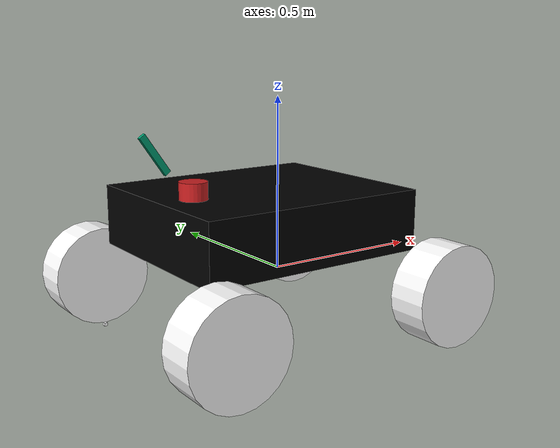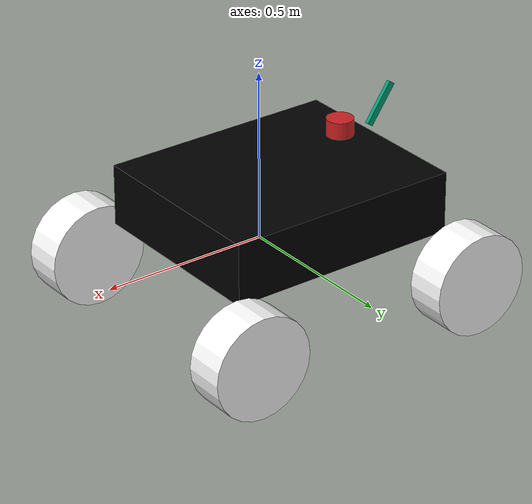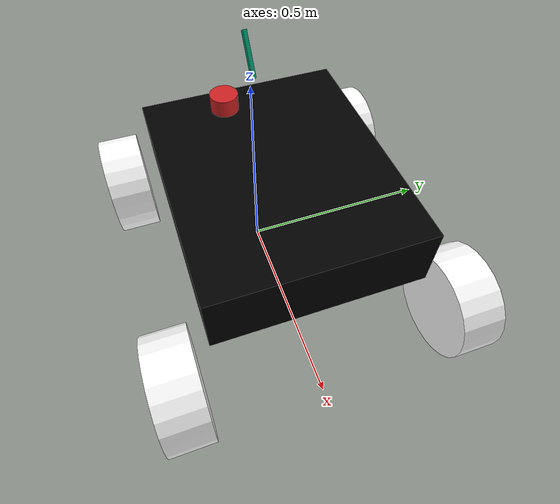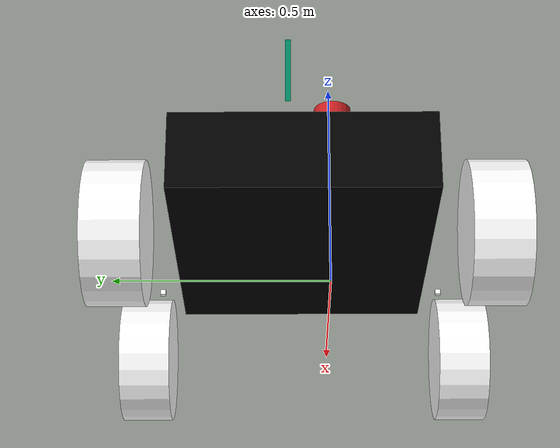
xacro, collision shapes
<?xml version="1.0" encoding = "UTF-8" ?>

<robot name="ozurover" xmlns:xacro="http://www.ros.org/wiki/xacro">

    <xacro:include filename="$(find ozurover_description)/urdf/materials.xacro"/>
    <xacro:include filename="$(find ozurover_description)/urdf/macros.xacro"/>
    <xacro:include filename="$(find ozurover_description)/urdf/rover.gazebo"/>

    <xacro:property name="x_length" value="1.0"/>
    <xacro:property name="y_length" value="0.6"/>
    <xacro:property name="z_length" value="0.2"/>
    <link name="base_footprint"/>

    <joint name="base_joint" type="fixed">
        <origin xyz="0 0 -0.19783" rpy="0 0 0"/>
        <parent link="base_footprint"/>
        <child link="link_chassis" />
    </joint>

    <link name="link_chassis">
        <visual>
            <origin rpy="0 0 0" xyz="0 0 0.26"/>
            <geometry>
                <mesh filename="package://ozurover_description/models/Base_AllCATPart-binary.stl" scale="0.001 0.001 0.001"/>
            </geometry>
            <material name="black"/>
        </visual>
        <inertial>
            <mass value="10"/>
            <origin rpy="${pi/2} 0 0" xyz="-0.02 0.065 0.34"/>
            <xacro:box_inertia w="0.68" d="0.5" h="0.18" m="10"/>
        </inertial>
        <collision>
            <origin rpy="0 0 0" xyz="-0.02 0.065 0.34"/>
            <geometry>
                <box size="0.7 0.58 0.18"/>
            </geometry>
        </collision>
    </link>

    <xacro:link_and_joint_wheel_base name="L" origin_xyz="-0.4 -0.2 0"/>
    <xacro:link_and_joint_wheel_base name="R" origin_xyz="-0.4 0.345 0"/>

    <xacro:wheel nameRL="R" name="FR" isLeft="-1" origin_xyz="0.05 -0.02 0.14" color="white"/>
    <xacro:wheel nameRL="R" name="RR" isLeft="-1" origin_xyz="0.05 -0.76 0.14" color="white"/>
    <xacro:wheel nameRL="L" name="FL" isLeft="1" origin_xyz="-0.075 -0.02 0.14" color="white"/>
    <xacro:wheel nameRL="L" name="RL" isLeft="1" origin_xyz="-0.075 -0.76 0.14" color="white"/>

    <link name="sensor_laser">
        <inertial>
            <origin xyz="0 0 0" rpy="0 0 0" />
            <mass value="1" />
            <xacro:cylinder_inertia m="1" r="0.04" h="0.05" />
        </inertial>

        <visual>
            <origin xyz="0 0 0" rpy="0 0 0" />
            <geometry>
            <cylinder radius="0.04" length="0.05"/>
            </geometry>
            <material name="red" />
        </visual>

        <collision>
            <origin xyz="0 0 0" rpy="0 0 0"/>
            <geometry>
            <cylinder radius="0.04" length="0.05"/>
            </geometry>
        </collision>
    </link>

    <joint name="joint_sensor_laser" type="fixed">
        <origin xyz="-0.28 0 0.46" rpy="0 0 ${pi}"/>
        <parent link="link_chassis"/>
        <child link="sensor_laser"/>
    </joint>

      <!-- Camera & IMU-->
    <joint name="imu_joint" type="fixed">
        <parent link="link_chassis"/>
        <child link="imu_link"/>
        <origin xyz="0.0 0 0.068" rpy="0 0 0"/>
    </joint>
    <link name="imu_link"/>

    <xacro:property name="r200_cam_rgb_px" value="0.005"/>
    <xacro:property name="r200_cam_rgb_py" value="0.018"/>
    <xacro:property name="r200_cam_rgb_pz" value="0.013"/>
    <xacro:property name="r200_cam_depth_offset" value="0.01"/>

    <joint name="camera_joint" type="fixed">
        <origin xyz="-0.3 0.1 0.5" rpy="2.18 0.0 -1.57"/>
        <parent link="link_chassis"/>
        <child link="camera_link"/>
    </joint>

    <link name="camera_link">
        <visual>
        <origin xyz="0 0 0" rpy="0 0 0"/>
        <geometry>
            <cylinder length="0.08" radius="0.01"/>
            <material name="blue">
            <color rgba="0 1 0 1"/>
            </material>
        </geometry>
        </visual>
        <collision>
        <origin xyz="0.003 0.065 0.007" rpy="0 0 0"/>
        <geometry>
            <box size="0.012 0.132 0.020"/>
        </geometry>
        </collision>
    </link>

    <joint name="camera_rgb_joint" type="fixed">
        <origin xyz="${r200_cam_rgb_px} ${r200_cam_rgb_py} ${r200_cam_rgb_pz}" rpy="-1.57 -1.57 0"/>
        <parent link="camera_link"/>
        <child link="camera_rgb_frame"/>
    </joint>
    <link name="camera_rgb_frame"/>

    <joint name="camera_rgb_optical_joint" type="fixed">
        <origin xyz="0 0 0" rpy="-1.57 0 -1.57"/>
        <parent link="camera_rgb_frame"/>
        <child link="camera_rgb_optical_frame"/>
    </joint>
    <link name="camera_rgb_optical_frame"/>

    <joint name="camera_depth_joint" type="fixed">
        <origin xyz="${r200_cam_rgb_px} ${r200_cam_rgb_py + r200_cam_depth_offset} ${r200_cam_rgb_pz}" rpy="-1.57 -1.57 0"/>
        <parent link="camera_link"/>
        <child link="camera_depth_frame"/>
    </joint>
    <link name="camera_depth_frame"/>

    <joint name="camera_depth_optical_joint" type="fixed">
        <origin xyz="0 0 0" rpy="0 0 0"/>
        <parent link="camera_depth_frame"/>
        <child link="camera_depth_optical_frame"/>
    </joint>
    <link name="camera_depth_optical_frame"/>

</robot>

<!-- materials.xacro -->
<robot>
  <material name="black">
    <color rgba="0.0 0.0 0.0 1.0"/>
  </material>
  <material name="blue">
    <color rgba="0.203125 0.23828125 0.28515625 1.0"/>
  </material>
  <material name="green">
    <color rgba="0.0 0.8 0.0 1.0"/>
  </material>
  <material name="grey">
    <color rgba="0.2 0.2 0.2 1.0"/>
  </material>
  <material name="orange">
    <color rgba="1.0 0.423529411765 0.0392156862745 1.0"/>
  </material>
  <material name="brown">
    <color rgba="0.870588235294 0.811764705882 0.764705882353 1.0"/>
  </material>
  <material name="red">
    <color rgba="0.80078125 0.12890625 0.1328125 1.0"/>
  </material>
  <material name="white">
    <color rgba="1.0 1.0 1.0 1.0"/>
  </material>
</robot>

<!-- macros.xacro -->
<robot xmlns:xacro="http://www.ros.org/wiki/xacro">

    <xacro:macro name="link_and_joint_wheel_base" params="name origin_xyz">
        <link name="link_wheel_base_${name}">
            <visual>
                <origin rpy="0 0 0" xyz="0 0 0"/>
                <geometry>
                    <mesh filename="package://ozurover_description/models/Legs_Wheels_AllCATPart-binary.stl" scale="0.001 0.001 0.001"/>
                </geometry>
                <material name="white"/>
            </visual>
            <inertial>
                <mass value="0.1"/>
                <origin rpy="0 0 0" xyz="0 0 0"/>
                <xacro:box_inertia w="0.1" d="0.1" h="0.1" m="0.1"/>
            </inertial>
            <!--TODO collision-->
            <collision>
                <origin rpy="0 0 0" xyz="0 0 0"/>
                <geometry>
                    <!--mesh filename="package://ozurover_description/models/Legs_Wheels_AllCATPart-binary.stl" scale="0.001 0.001 0.001"/-->
                    <box size="0.01 0.01 0.01"/>
                </geometry>
            </collision>
        </link>
        <joint name="joint_wheel_base_${name}" type="fixed">
            <origin rpy="0 0 ${pi/2}" xyz="${origin_xyz}"/>
            <child link="link_wheel_base_${name}"/>
            <parent link="link_chassis"/>
        </joint>
    </xacro:macro>

    <xacro:macro name="wheel" params="nameRL name isLeft origin_xyz color">
        <link name="wheel_${name}">
            <visual>
                <origin rpy="0 0 0" xyz="0 0 0"/>
                <geometry>
                    <mesh filename="package://ozurover_description/models/Tyre Assembly_AllCATPart-binary.stl" scale="0.001 0.001 0.001"/>
                </geometry>
                <material name="${color}"/>
            </visual>
            <inertial>
                <mass value="5"/>
                <origin rpy="0 0 0" xyz="0 0 ${0.05}"/>
                <xacro:cylinder_inertia m="5" r="0.15" h="0.12"/>
            </inertial>
            <collision>
                <origin rpy="0 0 0" xyz="0 0 0.05"/>
                <geometry>
                    <cylinder radius="0.15" length="0.12"/>
                </geometry>
            </collision>
        </link>
        <joint name="joint_wheel_${name}" type="continuous">
            <parent link="link_wheel_base_${nameRL}"/>
            <child link="wheel_${name}"/>
            <axis xyz="0 0 ${isLeft}"/>
            <origin rpy="${-isLeft*pi/2} 0 ${pi/2}" xyz="${origin_xyz}"/>
            <limit effort="50" velocity="30"/>
            <dynamics friction="0.1" damping="0.1"/>
        </joint>
    </xacro:macro>

    <xacro:macro name="cylinder_inertia" params="m r h" >
        <inertia ixx="${1/12*m*(3*r*r+h*h)}" ixy="0.0" ixz="0.0" iyy="${1/12*m*(3*r*r+h*h)}" iyz="0.0" izz="${1/2*m*r*r}"/>
    </xacro:macro>

    <xacro:macro name="box_inertia" params="w d h m" >
        <inertia ixx="${1/12*m*(h*h+d*d)}" ixy="0.0" ixz="0.0" iyy="${1/12*m*(w*w+d*d)}" iyz="0.0" izz="${1/12*m*(h*h+w*w)}"/>
    </xacro:macro>

</robot>
